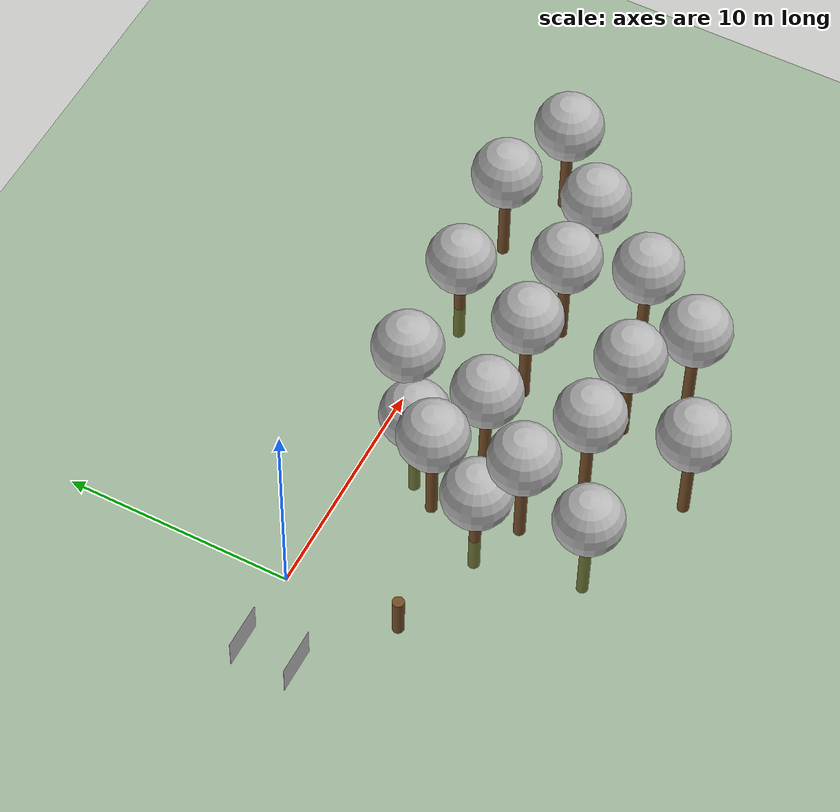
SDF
<sdf version="1.6">
 <world name="default">
  <model name="ground_plane">
   <static>1</static>
   <link name="link">
    <collision name="collision">
     <geometry><plane><normal>0 0 1</normal><size>250 250</size></plane></geometry>
     <surface><friction><ode><mu>1</mu><mu2>1</mu2></ode></friction></surface>
    </collision>
    <visual name="grass">
     <cast_shadows>0</cast_shadows>
     <geometry><plane><normal>0 0 1</normal><size>150 250</size></plane></geometry>
     <material>
      <script><uri>file://media/materials/scripts/Gazebo.material</uri><name>Gazebo/Grass</name></script>
     </material>
    </visual>
   </link>
  </model>
  <model name="tree_simple">
   <static>1</static>
   <link name="link">
    <pose>0 0 0.1 0 -0 0</pose>
    <inertial>
     <mass>666</mass>
     <inertia>
      <ixx>0.0861167</ixx>
      <ixy>0</ixy>
      <ixz>0</ixz>
      <iyy>0.0861167</iyy>
      <iyz>0</iyz>
      <izz>0.0861167</izz>
     </inertia>
    </inertial>
    <collision name="collision_trunk">
     <pose>0 0 2 0 -0 0</pose>
     <geometry><cylinder><radius>0.25</radius><length>4</length></cylinder></geometry>
     <surface>
      <contact>
       <poissons_ratio>0.347</poissons_ratio>
       <elastic_modulus>8.8e+09</elastic_modulus>
       <ode><kp>100000</kp><kd>100</kd><max_vel>100</max_vel><min_depth>0.001</min_depth></ode>
      </contact>
      <friction>
       <torsional>
        <coefficient>1</coefficient>
        <use_patch_radius>0</use_patch_radius>
        <surface_radius>0.01</surface_radius>
       </torsional>
      </friction>
     </surface>
    </collision>
    <collision name="collision_treetop">
     <pose>0 0 5.2 0 -0 0</pose>
     <geometry><sphere><radius>1.5</radius></sphere></geometry>
     <surface>
      <contact>
       <poissons_ratio>0.347</poissons_ratio>
       <elastic_modulus>8.8e+09</elastic_modulus>
       <ode><kp>100000</kp><kd>100</kd><max_vel>100</max_vel><min_depth>0.001</min_depth></ode>
      </contact>
      <friction>
       <torsional>
        <coefficient>1</coefficient>
        <use_patch_radius>0</use_patch_radius>
        <surface_radius>0.01</surface_radius>
       </torsional>
      </friction>
     </surface>
    </collision>
    <visual name="trunk">
     <pose>0 0 2 0 -0 0</pose>
     <geometry><cylinder><radius>0.25</radius><length>4</length></cylinder></geometry>
     <material>
      <script>
       <uri>model://tree_simple/scripts</uri>
       <uri>model://tree_simple/materials/textures</uri>
       <name>TreeSimple/Trunk</name>
      </script>
     </material>
    </visual>
    <visual name="treetop">
     <pose>0 0 5.2 0 -0 0</pose>
     <geometry><sphere><radius>1.5</radius></sphere></geometry>
     <material>
      <script>
       <uri>model://tree_simple/scripts</uri>
       <uri>model://tree_simple/materials/textures</uri>
       <name>TreeSimple/Treetop</name>
      </script>
     </material>
    </visual>
   </link>
   <pose>5.72189 -3.56908 0 0 -0 0</pose>
  </model>
  <model name="tree_simple_0">
   <static>1</static>
   <link name="link">
    <pose>0 0 0.1 0 -0 0</pose>
    <inertial>
     <mass>666</mass>
     <inertia>
      <ixx>0.0861167</ixx>
      <ixy>0</ixy>
      <ixz>0</ixz>
      <iyy>0.0861167</iyy>
      <iyz>0</iyz>
      <izz>0.0861167</izz>
     </inertia>
    </inertial>
    <collision name="collision_trunk">
     <pose>0 0 2 0 -0 0</pose>
     <geometry><cylinder><radius>0.25</radius><length>4</length></cylinder></geometry>
     <surface>
      <contact>
       <poissons_ratio>0.347</poissons_ratio>
       <elastic_modulus>8.8e+09</elastic_modulus>
       <ode><kp>100000</kp><kd>100</kd><max_vel>100</max_vel><min_depth>0.001</min_depth></ode>
      </contact>
      <friction>
       <torsional>
        <coefficient>1</coefficient>
        <use_patch_radius>0</use_patch_radius>
        <surface_radius>0.01</surface_radius>
       </torsional>
      </friction>
     </surface>
    </collision>
    <collision name="collision_treetop">
     <pose>0 0 5.2 0 -0 0</pose>
     <geometry><sphere><radius>1.5</radius></sphere></geometry>
     <surface>
      <contact>
       <poissons_ratio>0.347</poissons_ratio>
       <elastic_modulus>8.8e+09</elastic_modulus>
       <ode><kp>100000</kp><kd>100</kd><max_vel>100</max_vel><min_depth>0.001</min_depth></ode>
      </contact>
      <friction>
       <torsional>
        <coefficient>1</coefficient>
        <use_patch_radius>0</use_patch_radius>
        <surface_radius>0.01</surface_radius>
       </torsional>
      </friction>
     </surface>
    </collision>
    <visual name="trunk">
     <pose>0 0 2 0 -0 0</pose>
     <geometry><cylinder><radius>0.25</radius><length>4</length></cylinder></geometry>
     <material>
      <script>
       <uri>model://tree_simple/scripts</uri>
       <uri>model://tree_simple/materials/textures</uri>
       <name>TreeSimple/Trunk</name>
      </script>
     </material>
    </visual>
    <visual name="treetop">
     <pose>0 0 5.2 0 -0 0</pose>
     <geometry><sphere><radius>1.5</radius></sphere></geometry>
     <material>
      <script>
       <uri>model://tree_simple/scripts</uri>
       <uri>model://tree_simple/materials/textures</uri>
       <name>TreeSimple/Treetop</name>
      </script>
     </material>
    </visual>
   </link>
   <pose>10.5264 -12.5818 0 0 -0 0</pose>
  </model>
  <model name="tree_simple_3">
   <static>1</static>
   <link name="link">
    <pose>0 0 0.1 0 -0 0</pose>
    <inertial>
     <mass>666</mass>
     <inertia>
      <ixx>0.0861167</ixx>
      <ixy>0</ixy>
      <ixz>0</ixz>
      <iyy>0.0861167</iyy>
      <iyz>0</iyz>
      <izz>0.0861167</izz>
     </inertia>
    </inertial>
    <collision name="collision_trunk">
     <pose>0 0 2 0 -0 0</pose>
     <geometry><cylinder><radius>0.25</radius><length>4</length></cylinder></geometry>
     <surface>
      <contact>
       <poissons_ratio>0.347</poissons_ratio>
       <elastic_modulus>8.8e+09</elastic_modulus>
       <ode><kp>100000</kp><kd>100</kd><max_vel>100</max_vel><min_depth>0.001</min_depth></ode>
      </contact>
      <friction>
       <torsional>
        <coefficient>1</coefficient>
        <use_patch_radius>0</use_patch_radius>
        <surface_radius>0.01</surface_radius>
       </torsional>
      </friction>
     </surface>
    </collision>
    <collision name="collision_treetop">
     <pose>0 0 5.2 0 -0 0</pose>
     <geometry><sphere><radius>1.5</radius></sphere></geometry>
     <surface>
      <contact>
       <poissons_ratio>0.347</poissons_ratio>
       <elastic_modulus>8.8e+09</elastic_modulus>
       <ode><kp>100000</kp><kd>100</kd><max_vel>100</max_vel><min_depth>0.001</min_depth></ode>
      </contact>
      <friction>
       <torsional>
        <coefficient>1</coefficient>
        <use_patch_radius>0</use_patch_radius>
        <surface_radius>0.01</surface_radius>
       </torsional>
      </friction>
     </surface>
    </collision>
    <visual name="trunk">
     <pose>0 0 2 0 -0 0</pose>
     <geometry><cylinder><radius>0.25</radius><length>4</length></cylinder></geometry>
     <material>
      <script>
       <uri>model://tree_simple/scripts</uri>
       <uri>model://tree_simple/materials/textures</uri>
       <name>TreeSimple/Trunk</name>
      </script>
     </material>
    </visual>
    <visual name="treetop">
     <pose>0 0 5.2 0 -0 0</pose>
     <geometry><sphere><radius>1.5</radius></sphere></geometry>
     <material>
      <script>
       <uri>model://tree_simple/scripts</uri>
       <uri>model://tree_simple/materials/textures</uri>
       <name>TreeSimple/Treetop</name>
      </script>
     </material>
    </visual>
   </link>
   <pose>9.46646 -8.62281 0 0 -0 0</pose>
  </model>
  <model name="tree_simple_4">
   <static>1</static>
   <link name="link">
    <pose>0 0 0.1 0 -0 0</pose>
    <inertial>
     <mass>666</mass>
     <inertia>
      <ixx>0.0861167</ixx>
      <ixy>0</ixy>
      <ixz>0</ixz>
      <iyy>0.0861167</iyy>
      <iyz>0</iyz>
      <izz>0.0861167</izz>
     </inertia>
    </inertial>
    <collision name="collision_trunk">
     <pose>0 0 2 0 -0 0</pose>
     <geometry><cylinder><radius>0.25</radius><length>4</length></cylinder></geometry>
     <surface>
      <contact>
       <poissons_ratio>0.347</poissons_ratio>
       <elastic_modulus>8.8e+09</elastic_modulus>
       <ode><kp>100000</kp><kd>100</kd><max_vel>100</max_vel><min_depth>0.001</min_depth></ode>
      </contact>
      <friction>
       <torsional>
        <coefficient>1</coefficient>
        <use_patch_radius>0</use_patch_radius>
        <surface_radius>0.01</surface_radius>
       </torsional>
      </friction>
     </surface>
    </collision>
    <collision name="collision_treetop">
     <pose>0 0 5.2 0 -0 0</pose>
     <geometry><sphere><radius>1.5</radius></sphere></geometry>
     <surface>
      <contact>
       <poissons_ratio>0.347</poissons_ratio>
       <elastic_modulus>8.8e+09</elastic_modulus>
       <ode><kp>100000</kp><kd>100</kd><max_vel>100</max_vel><min_depth>0.001</min_depth></ode>
      </contact>
      <friction>
       <torsional>
        <coefficient>1</coefficient>
        <use_patch_radius>0</use_patch_radius>
        <surface_radius>0.01</surface_radius>
       </torsional>
      </friction>
     </surface>
    </collision>
    <visual name="trunk">
     <pose>0 0 2 0 -0 0</pose>
     <geometry><cylinder><radius>0.25</radius><length>4</length></cylinder></geometry>
     <material>
      <script>
       <uri>model://tree_simple/scripts</uri>
       <uri>model://tree_simple/materials/textures</uri>
       <name>TreeSimple/Trunk</name>
      </script>
     </material>
    </visual>
    <visual name="treetop">
     <pose>0 0 5.2 0 -0 0</pose>
     <geometry><sphere><radius>1.5</radius></sphere></geometry>
     <material>
      <script>
       <uri>model://tree_simple/scripts</uri>
       <uri>model://tree_simple/materials/textures</uri>
       <name>TreeSimple/Treetop</name>
      </script>
     </material>
    </visual>
   </link>
   <pose>15.196 -10.5861 0 0 -0 0</pose>
  </model>
  <model name="tree_simple_5">
   <static>1</static>
   <link name="link">
    <pose>0 0 0.1 0 -0 0</pose>
    <inertial>
     <mass>666</mass>
     <inertia>
      <ixx>0.0861167</ixx>
      <ixy>0</ixy>
      <ixz>0</ixz>
      <iyy>0.0861167</iyy>
      <iyz>0</iyz>
      <izz>0.0861167</izz>
     </inertia>
    </inertial>
    <collision name="collision_trunk">
     <pose>0 0 2 0 -0 0</pose>
     <geometry><cylinder><radius>0.25</radius><length>4</length></cylinder></geometry>
     <surface>
      <contact>
       <poissons_ratio>0.347</poissons_ratio>
       <elastic_modulus>8.8e+09</elastic_modulus>
       <ode><kp>100000</kp><kd>100</kd><max_vel>100</max_vel><min_depth>0.001</min_depth></ode>
      </contact>
      <friction>
       <torsional>
        <coefficient>1</coefficient>
        <use_patch_radius>0</use_patch_radius>
        <surface_radius>0.01</surface_radius>
       </torsional>
      </friction>
     </surface>
    </collision>
    <collision name="collision_treetop">
     <pose>0 0 5.2 0 -0 0</pose>
     <geometry><sphere><radius>1.5</radius></sphere></geometry>
     <surface>
      <contact>
       <poissons_ratio>0.347</poissons_ratio>
       <elastic_modulus>8.8e+09</elastic_modulus>
       <ode><kp>100000</kp><kd>100</kd><max_vel>100</max_vel><min_depth>0.001</min_depth></ode>
      </contact>
      <friction>
       <torsional>
        <coefficient>1</coefficient>
        <use_patch_radius>0</use_patch_radius>
        <surface_radius>0.01</surface_radius>
       </torsional>
      </friction>
     </surface>
    </collision>
    <visual name="trunk">
     <pose>0 0 2 0 -0 0</pose>
     <geometry><cylinder><radius>0.25</radius><length>4</length></cylinder></geometry>
     <material>
      <script>
       <uri>model://tree_simple/scripts</uri>
       <uri>model://tree_simple/materials/textures</uri>
       <name>TreeSimple/Trunk</name>
      </script>
     </material>
    </visual>
    <visual name="treetop">
     <pose>0 0 5.2 0 -0 0</pose>
     <geometry><sphere><radius>1.5</radius></sphere></geometry>
     <material>
      <script>
       <uri>model://tree_simple/scripts</uri>
       <uri>model://tree_simple/materials/textures</uri>
       <name>TreeSimple/Treetop</name>
      </script>
     </material>
    </visual>
   </link>
   <pose>9.09139 -0.673957 0 0 -0 0</pose>
  </model>
  <model name="tree_simple_6">
   <static>1</static>
   <link name="link">
    <pose>0 0 0.1 0 -0 0</pose>
    <inertial>
     <mass>666</mass>
     <inertia>
      <ixx>0.0861167</ixx>
      <ixy>0</ixy>
      <ixz>0</ixz>
      <iyy>0.0861167</iyy>
      <iyz>0</iyz>
      <izz>0.0861167</izz>
     </inertia>
    </inertial>
    <collision name="collision_trunk">
     <pose>0 0 2 0 -0 0</pose>
     <geometry><cylinder><radius>0.25</radius><length>4</length></cylinder></geometry>
     <surface>
      <contact>
       <poissons_ratio>0.347</poissons_ratio>
       <elastic_modulus>8.8e+09</elastic_modulus>
       <ode><kp>100000</kp><kd>100</kd><max_vel>100</max_vel><min_depth>0.001</min_depth></ode>
      </contact>
      <friction>
       <torsional>
        <coefficient>1</coefficient>
        <use_patch_radius>0</use_patch_radius>
        <surface_radius>0.01</surface_radius>
       </torsional>
      </friction>
     </surface>
    </collision>
    <collision name="collision_treetop">
     <pose>0 0 5.2 0 -0 0</pose>
     <geometry><sphere><radius>1.5</radius></sphere></geometry>
     <surface>
      <contact>
       <poissons_ratio>0.347</poissons_ratio>
       <elastic_modulus>8.8e+09</elastic_modulus>
       <ode><kp>100000</kp><kd>100</kd><max_vel>100</max_vel><min_depth>0.001</min_depth></ode>
      </contact>
      <friction>
       <torsional>
        <coefficient>1</coefficient>
        <use_patch_radius>0</use_patch_radius>
        <surface_radius>0.01</surface_radius>
       </torsional>
      </friction>
     </surface>
    </collision>
    <visual name="trunk">
     <pose>0 0 2 0 -0 0</pose>
     <geometry><cylinder><radius>0.25</radius><length>4</length></cylinder></geometry>
     <material>
      <script>
       <uri>model://tree_simple/scripts</uri>
       <uri>model://tree_simple/materials/textures</uri>
       <name>TreeSimple/Trunk</name>
      </script>
     </material>
    </visual>
    <visual name="treetop">
     <pose>0 0 5.2 0 -0 0</pose>
     <geometry><sphere><radius>1.5</radius></sphere></geometry>
     <material>
      <script>
       <uri>model://tree_simple/scripts</uri>
       <uri>model://tree_simple/materials/textures</uri>
       <name>TreeSimple/Treetop</name>
      </script>
     </material>
    </visual>
   </link>
   <pose>12.8258 -8.77731 0 0 -0 0</pose>
  </model>
  <model name="tree_simple_7">
   <static>1</static>
   <link name="link">
    <pose>0 0 0.1 0 -0 0</pose>
    <inertial>
     <mass>666</mass>
     <inertia>
      <ixx>0.0861167</ixx>
      <ixy>0</ixy>
      <ixz>0</ixz>
      <iyy>0.0861167</iyy>
      <iyz>0</iyz>
      <izz>0.0861167</izz>
     </inertia>
    </inertial>
    <collision name="collision_trunk">
     <pose>0 0 2 0 -0 0</pose>
     <geometry><cylinder><radius>0.25</radius><length>4</length></cylinder></geometry>
     <surface>
      <contact>
       <poissons_ratio>0.347</poissons_ratio>
       <elastic_modulus>8.8e+09</elastic_modulus>
       <ode><kp>100000</kp><kd>100</kd><max_vel>100</max_vel><min_depth>0.001</min_depth></ode>
      </contact>
      <friction>
       <torsional>
        <coefficient>1</coefficient>
        <use_patch_radius>0</use_patch_radius>
        <surface_radius>0.01</surface_radius>
       </torsional>
      </friction>
     </surface>
    </collision>
    <collision name="collision_treetop">
     <pose>0 0 5.2 0 -0 0</pose>
     <geometry><sphere><radius>1.5</radius></sphere></geometry>
     <surface>
      <contact>
       <poissons_ratio>0.347</poissons_ratio>
       <elastic_modulus>8.8e+09</elastic_modulus>
       <ode><kp>100000</kp><kd>100</kd><max_vel>100</max_vel><min_depth>0.001</min_depth></ode>
      </contact>
      <friction>
       <torsional>
        <coefficient>1</coefficient>
        <use_patch_radius>0</use_patch_radius>
        <surface_radius>0.01</surface_radius>
       </torsional>
      </friction>
     </surface>
    </collision>
    <visual name="trunk">
     <pose>0 0 2 0 -0 0</pose>
     <geometry><cylinder><radius>0.25</radius><length>4</length></cylinder></geometry>
     <material>
      <script>
       <uri>model://tree_simple/scripts</uri>
       <uri>model://tree_simple/materials/textures</uri>
       <name>TreeSimple/Trunk</name>
      </script>
     </material>
    </visual>
    <visual name="treetop">
     <pose>0 0 5.2 0 -0 0</pose>
     <geometry><sphere><radius>1.5</radius></sphere></geometry>
     <material>
      <script>
       <uri>model://tree_simple/scripts</uri>
       <uri>model://tree_simple/materials/textures</uri>
       <name>TreeSimple/Treetop</name>
      </script>
     </material>
    </visual>
   </link>
   <pose>12.5972 -4.31424 0 0 -0 0</pose>
  </model>
  <model name="tree_simple_8">
   <static>1</static>
   <link name="link">
    <pose>0 0 0.1 0 -0 0</pose>
    <inertial>
     <mass>666</mass>
     <inertia>
      <ixx>0.0861167</ixx>
      <ixy>0</ixy>
      <ixz>0</ixz>
      <iyy>0.0861167</iyy>
      <iyz>0</iyz>
      <izz>0.0861167</izz>
     </inertia>
    </inertial>
    <collision name="collision_trunk">
     <pose>0 0 2 0 -0 0</pose>
     <geometry><cylinder><radius>0.25</radius><length>4</length></cylinder></geometry>
     <surface>
      <contact>
       <poissons_ratio>0.347</poissons_ratio>
       <elastic_modulus>8.8e+09</elastic_modulus>
       <ode><kp>100000</kp><kd>100</kd><max_vel>100</max_vel><min_depth>0.001</min_depth></ode>
      </contact>
      <friction>
       <torsional>
        <coefficient>1</coefficient>
        <use_patch_radius>0</use_patch_radius>
        <surface_radius>0.01</surface_radius>
       </torsional>
      </friction>
     </surface>
    </collision>
    <collision name="collision_treetop">
     <pose>0 0 5.2 0 -0 0</pose>
     <geometry><sphere><radius>1.5</radius></sphere></geometry>
     <surface>
      <contact>
       <poissons_ratio>0.347</poissons_ratio>
       <elastic_modulus>8.8e+09</elastic_modulus>
       <ode><kp>100000</kp><kd>100</kd><max_vel>100</max_vel><min_depth>0.001</min_depth></ode>
      </contact>
      <friction>
       <torsional>
        <coefficient>1</coefficient>
        <use_patch_radius>0</use_patch_radius>
        <surface_radius>0.01</surface_radius>
       </torsional>
      </friction>
     </surface>
    </collision>
    <visual name="trunk">
     <pose>0 0 2 0 -0 0</pose>
     <geometry><cylinder><radius>0.25</radius><length>4</length></cylinder></geometry>
     <material>
      <script>
       <uri>model://tree_simple/scripts</uri>
       <uri>model://tree_simple/materials/textures</uri>
       <name>TreeSimple/Trunk</name>
      </script>
     </material>
    </visual>
    <visual name="treetop">
     <pose>0 0 5.2 0 -0 0</pose>
     <geometry><sphere><radius>1.5</radius></sphere></geometry>
     <material>
      <script>
       <uri>model://tree_simple/scripts</uri>
       <uri>model://tree_simple/materials/textures</uri>
       <name>TreeSimple/Treetop</name>
      </script>
     </material>
    </visual>
   </link>
   <pose>6.40844 -7.20661 0 0 -0 0</pose>
  </model>
  <model name="tree_simple_9">
   <static>1</static>
   <link name="link">
    <pose>0 0 0.1 0 -0 0</pose>
    <inertial>
     <mass>666</mass>
     <inertia>
      <ixx>0.0861167</ixx>
      <ixy>0</ixy>
      <ixz>0</ixz>
      <iyy>0.0861167</iyy>
      <iyz>0</iyz>
      <izz>0.0861167</izz>
     </inertia>
    </inertial>
    <collision name="collision_trunk">
     <pose>0 0 2 0 -0 0</pose>
     <geometry><cylinder><radius>0.25</radius><length>4</length></cylinder></geometry>
     <surface>
      <contact>
       <poissons_ratio>0.347</poissons_ratio>
       <elastic_modulus>8.8e+09</elastic_modulus>
       <ode><kp>100000</kp><kd>100</kd><max_vel>100</max_vel><min_depth>0.001</min_depth></ode>
      </contact>
      <friction>
       <torsional>
        <coefficient>1</coefficient>
        <use_patch_radius>0</use_patch_radius>
        <surface_radius>0.01</surface_radius>
       </torsional>
      </friction>
     </surface>
    </collision>
    <collision name="collision_treetop">
     <pose>0 0 5.2 0 -0 0</pose>
     <geometry><sphere><radius>1.5</radius></sphere></geometry>
     <surface>
      <contact>
       <poissons_ratio>0.347</poissons_ratio>
       <elastic_modulus>8.8e+09</elastic_modulus>
       <ode><kp>100000</kp><kd>100</kd><max_vel>100</max_vel><min_depth>0.001</min_depth></ode>
      </contact>
      <friction>
       <torsional>
        <coefficient>1</coefficient>
        <use_patch_radius>0</use_patch_radius>
        <surface_radius>0.01</surface_radius>
       </torsional>
      </friction>
     </surface>
    </collision>
    <visual name="trunk">
     <pose>0 0 2 0 -0 0</pose>
     <geometry><cylinder><radius>0.25</radius><length>4</length></cylinder></geometry>
     <material>
      <script>
       <uri>model://tree_simple/scripts</uri>
       <uri>model://tree_simple/materials/textures</uri>
       <name>TreeSimple/Trunk</name>
      </script>
     </material>
    </visual>
    <visual name="treetop">
     <pose>0 0 5.2 0 -0 0</pose>
     <geometry><sphere><radius>1.5</radius></sphere></geometry>
     <material>
      <script>
       <uri>model://tree_simple/scripts</uri>
       <uri>model://tree_simple/materials/textures</uri>
       <name>TreeSimple/Treetop</name>
      </script>
     </material>
    </visual>
   </link>
   <pose>17.161 -7.52811 0 0 -0 0</pose>
  </model>
  <model name="tree_simple_10">
   <static>1</static>
   <link name="link">
    <pose>0 0 0.1 0 -0 0</pose>
    <inertial>
     <mass>666</mass>
     <inertia>
      <ixx>0.0861167</ixx>
      <ixy>0</ixy>
      <ixz>0</ixz>
      <iyy>0.0861167</iyy>
      <iyz>0</iyz>
      <izz>0.0861167</izz>
     </inertia>
    </inertial>
    <collision name="collision_trunk">
     <pose>0 0 2 0 -0 0</pose>
     <geometry><cylinder><radius>0.25</radius><length>4</length></cylinder></geometry>
     <surface>
      <contact>
       <poissons_ratio>0.347</poissons_ratio>
       <elastic_modulus>8.8e+09</elastic_modulus>
       <ode><kp>100000</kp><kd>100</kd><max_vel>100</max_vel><min_depth>0.001</min_depth></ode>
      </contact>
      <friction>
       <torsional>
        <coefficient>1</coefficient>
        <use_patch_radius>0</use_patch_radius>
        <surface_radius>0.01</surface_radius>
       </torsional>
      </friction>
     </surface>
    </collision>
    <collision name="collision_treetop">
     <pose>0 0 5.2 0 -0 0</pose>
     <geometry><sphere><radius>1.5</radius></sphere></geometry>
     <surface>
      <contact>
       <poissons_ratio>0.347</poissons_ratio>
       <elastic_modulus>8.8e+09</elastic_modulus>
       <ode><kp>100000</kp><kd>100</kd><max_vel>100</max_vel><min_depth>0.001</min_depth></ode>
      </contact>
      <friction>
       <torsional>
        <coefficient>1</coefficient>
        <use_patch_radius>0</use_patch_radius>
        <surface_radius>0.01</surface_radius>
       </torsional>
      </friction>
     </surface>
    </collision>
    <visual name="trunk">
     <pose>0 0 2 0 -0 0</pose>
     <geometry><cylinder><radius>0.25</radius><length>4</length></cylinder></geometry>
     <material>
      <script>
       <uri>model://tree_simple/scripts</uri>
       <uri>model://tree_simple/materials/textures</uri>
       <name>TreeSimple/Trunk</name>
      </script>
     </material>
    </visual>
    <visual name="treetop">
     <pose>0 0 5.2 0 -0 0</pose>
     <geometry><sphere><radius>1.5</radius></sphere></geometry>
     <material>
      <script>
       <uri>model://tree_simple/scripts</uri>
       <uri>model://tree_simple/materials/textures</uri>
       <name>TreeSimple/Treetop</name>
      </script>
     </material>
    </visual>
   </link>
   <pose>19.4597 -4.05165 0 0 -0 0</pose>
  </model>
  <model name="tree_simple_16">
   <static>1</static>
   <link name="link">
    <pose>0 0 0.1 0 -0 0</pose>
    <inertial>
     <mass>666</mass>
     <inertia>
      <ixx>0.0861167</ixx>
      <ixy>0</ixy>
      <ixz>0</ixz>
      <iyy>0.0861167</iyy>
      <iyz>0</iyz>
      <izz>0.0861167</izz>
     </inertia>
    </inertial>
    <collision name="collision_trunk">
     <pose>0 0 2 0 -0 0</pose>
     <geometry><cylinder><radius>0.25</radius><length>4</length></cylinder></geometry>
     <surface>
      <contact>
       <poissons_ratio>0.347</poissons_ratio>
       <elastic_modulus>8.8e+09</elastic_modulus>
       <ode><kp>100000</kp><kd>100</kd><max_vel>100</max_vel><min_depth>0.001</min_depth></ode>
      </contact>
      <friction>
       <torsional>
        <coefficient>1</coefficient>
        <use_patch_radius>0</use_patch_radius>
        <surface_radius>0.01</surface_radius>
       </torsional>
      </friction>
     </surface>
    </collision>
    <collision name="collision_treetop">
     <pose>0 0 5.2 0 -0 0</pose>
     <geometry><sphere><radius>1.5</radius></sphere></geometry>
     <surface>
      <contact>
       <poissons_ratio>0.347</poissons_ratio>
       <elastic_modulus>8.8e+09</elastic_modulus>
       <ode><kp>100000</kp><kd>100</kd><max_vel>100</max_vel><min_depth>0.001</min_depth></ode>
      </contact>
      <friction>
       <torsional>
        <coefficient>1</coefficient>
        <use_patch_radius>0</use_patch_radius>
        <surface_radius>0.01</surface_radius>
       </torsional>
      </friction>
     </surface>
    </collision>
    <visual name="trunk">
     <pose>0 0 2 0 -0 0</pose>
     <geometry><cylinder><radius>0.25</radius><length>4</length></cylinder></geometry>
     <material>
      <script>
       <uri>model://tree_simple/scripts</uri>
       <uri>model://tree_simple/materials/textures</uri>
       <name>TreeSimple/Trunk</name>
      </script>
     </material>
    </visual>
    <visual name="treetop">
     <pose>0 0 5.2 0 -0 0</pose>
     <geometry><sphere><radius>1.5</radius></sphere></geometry>
     <material>
      <script>
       <uri>model://tree_simple/scripts</uri>
       <uri>model://tree_simple/materials/textures</uri>
       <name>TreeSimple/Treetop</name>
      </script>
     </material>
    </visual>
   </link>
   <pose>8.59035 -4.49916 0 0 -0 0</pose>
  </model>
  <model name="tree_simple_18">
   <static>1</static>
   <link name="link">
    <pose>0 0 0.1 0 -0 0</pose>
    <inertial>
     <mass>666</mass>
     <inertia>
      <ixx>0.0861167</ixx>
      <ixy>0</ixy>
      <ixz>0</ixz>
      <iyy>0.0861167</iyy>
      <iyz>0</iyz>
      <izz>0.0861167</izz>
     </inertia>
    </inertial>
    <collision name="collision_trunk">
     <pose>0 0 2 0 -0 0</pose>
     <geometry><cylinder><radius>0.25</radius><length>4</length></cylinder></geometry>
     <surface>
      <contact>
       <poissons_ratio>0.347</poissons_ratio>
       <elastic_modulus>8.8e+09</elastic_modulus>
       <ode><kp>100000</kp><kd>100</kd><max_vel>100</max_vel><min_depth>0.001</min_depth></ode>
      </contact>
      <friction>
       <torsional>
        <coefficient>1</coefficient>
        <use_patch_radius>0</use_patch_radius>
        <surface_radius>0.01</surface_radius>
       </torsional>
      </friction>
     </surface>
    </collision>
    <collision name="collision_treetop">
     <pose>0 0 5.2 0 -0 0</pose>
     <geometry><sphere><radius>1.5</radius></sphere></geometry>
     <surface>
      <contact>
       <poissons_ratio>0.347</poissons_ratio>
       <elastic_modulus>8.8e+09</elastic_modulus>
       <ode><kp>100000</kp><kd>100</kd><max_vel>100</max_vel><min_depth>0.001</min_depth></ode>
      </contact>
      <friction>
       <torsional>
        <coefficient>1</coefficient>
        <use_patch_radius>0</use_patch_radius>
        <surface_radius>0.01</surface_radius>
       </torsional>
      </friction>
     </surface>
    </collision>
    <visual name="trunk">
     <pose>0 0 2 0 -0 0</pose>
     <geometry><cylinder><radius>0.25</radius><length>4</length></cylinder></geometry>
     <material>
      <script>
       <uri>model://tree_simple/scripts</uri>
       <uri>model://tree_simple/materials/textures</uri>
       <name>TreeSimple/Trunk</name>
      </script>
     </material>
    </visual>
    <visual name="treetop">
     <pose>0 0 5.2 0 -0 0</pose>
     <geometry><sphere><radius>1.5</radius></sphere></geometry>
     <material>
      <script>
       <uri>model://tree_simple/scripts</uri>
       <uri>model://tree_simple/materials/textures</uri>
       <name>TreeSimple/Treetop</name>
      </script>
     </material>
    </visual>
   </link>
   <pose>15.471 0.136496 -2.094 0 -0 0</pose>
  </model>
  <model name="tree_simple_20">
   <static>1</static>
   <link name="link">
    <pose>0 0 0.1 0 -0 0</pose>
    <inertial>
     <mass>666</mass>
     <inertia>
      <ixx>0.0861167</ixx>
      <ixy>0</ixy>
      <ixz>0</ixz>
      <iyy>0.0861167</iyy>
      <iyz>0</iyz>
      <izz>0.0861167</izz>
     </inertia>
    </inertial>
    <collision name="collision_trunk">
     <pose>0 0 2 0 -0 0</pose>
     <geometry><cylinder><radius>0.25</radius><length>4</length></cylinder></geometry>
     <surface>
      <contact>
       <poissons_ratio>0.347</poissons_ratio>
       <elastic_modulus>8.8e+09</elastic_modulus>
       <ode><kp>100000</kp><kd>100</kd><max_vel>100</max_vel><min_depth>0.001</min_depth></ode>
      </contact>
      <friction>
       <torsional>
        <coefficient>1</coefficient>
        <use_patch_radius>0</use_patch_radius>
        <surface_radius>0.01</surface_radius>
       </torsional>
      </friction>
     </surface>
    </collision>
    <collision name="collision_treetop">
     <pose>0 0 5.2 0 -0 0</pose>
     <geometry><sphere><radius>1.5</radius></sphere></geometry>
     <surface>
      <contact>
       <poissons_ratio>0.347</poissons_ratio>
       <elastic_modulus>8.8e+09</elastic_modulus>
       <ode><kp>100000</kp><kd>100</kd><max_vel>100</max_vel><min_depth>0.001</min_depth></ode>
      </contact>
      <friction>
       <torsional>
        <coefficient>1</coefficient>
        <use_patch_radius>0</use_patch_radius>
        <surface_radius>0.01</surface_radius>
       </torsional>
      </friction>
     </surface>
    </collision>
    <visual name="trunk">
     <pose>0 0 2 0 -0 0</pose>
     <geometry><cylinder><radius>0.25</radius><length>4</length></cylinder></geometry>
     <material>
      <script>
       <uri>model://tree_simple/scripts</uri>
       <uri>model://tree_simple/materials/textures</uri>
       <name>TreeSimple/Trunk</name>
      </script>
     </material>
    </visual>
    <visual name="treetop">
     <pose>0 0 5.2 0 -0 0</pose>
     <geometry><sphere><radius>1.5</radius></sphere></geometry>
     <material>
      <script>
       <uri>model://tree_simple/scripts</uri>
       <uri>model://tree_simple/materials/textures</uri>
       <name>TreeSimple/Treetop</name>
      </script>
     </material>
    </visual>
   </link>
   <pose>18.9425 -0.172712 0 0 -0 0</pose>
  </model>
  <model name="tree_simple_24">
   <static>1</static>
   <link name="link">
    <pose>0 0 0.1 0 -0 0</pose>
    <inertial>
     <mass>666</mass>
     <inertia>
      <ixx>0.0861167</ixx>
      <ixy>0</ixy>
      <ixz>0</ixz>
      <iyy>0.0861167</iyy>
      <iyz>0</iyz>
      <izz>0.0861167</izz>
     </inertia>
    </inertial>
    <collision name="collision_trunk">
     <pose>0 0 2 0 -0 0</pose>
     <geometry><cylinder><radius>0.25</radius><length>4</length></cylinder></geometry>
     <surface>
      <contact>
       <poissons_ratio>0.347</poissons_ratio>
       <elastic_modulus>8.8e+09</elastic_modulus>
       <ode><kp>100000</kp><kd>100</kd><max_vel>100</max_vel><min_depth>0.001</min_depth></ode>
      </contact>
      <friction>
       <torsional>
        <coefficient>1</coefficient>
        <use_patch_radius>0</use_patch_radius>
        <surface_radius>0.01</surface_radius>
       </torsional>
      </friction>
     </surface>
    </collision>
    <collision name="collision_treetop">
     <pose>0 0 5.2 0 -0 0</pose>
     <geometry><sphere><radius>1.5</radius></sphere></geometry>
     <surface>
      <contact>
       <poissons_ratio>0.347</poissons_ratio>
       <elastic_modulus>8.8e+09</elastic_modulus>
       <ode><kp>100000</kp><kd>100</kd><max_vel>100</max_vel><min_depth>0.001</min_depth></ode>
      </contact>
      <friction>
       <torsional>
        <coefficient>1</coefficient>
        <use_patch_radius>0</use_patch_radius>
        <surface_radius>0.01</surface_radius>
       </torsional>
      </friction>
     </surface>
    </collision>
    <visual name="trunk">
     <pose>0 0 2 0 -0 0</pose>
     <geometry><cylinder><radius>0.25</radius><length>4</length></cylinder></geometry>
     <material>
      <script>
       <uri>model://tree_simple/scripts</uri>
       <uri>model://tree_simple/materials/textures</uri>
       <name>TreeSimple/Trunk</name>
      </script>
     </material>
    </visual>
    <visual name="treetop">
     <pose>0 0 5.2 0 -0 0</pose>
     <geometry><sphere><radius>1.5</radius></sphere></geometry>
     <material>
      <script>
       <uri>model://tree_simple/scripts</uri>
       <uri>model://tree_simple/materials/textures</uri>
       <name>TreeSimple/Treetop</name>
      </script>
     </material>
    </visual>
   </link>
   <pose>16.1005 -4.34999 0 0 -0 0</pose>
  </model>
  <model name="tree_simple_27">
   <static>1</static>
   <link name="link">
    <pose>0 0 0.1 0 -0 0</pose>
    <inertial>
     <mass>666</mass>
     <inertia>
      <ixx>0.0861167</ixx>
      <ixy>0</ixy>
      <ixz>0</ixz>
      <iyy>0.0861167</iyy>
      <iyz>0</iyz>
      <izz>0.0861167</izz>
     </inertia>
    </inertial>
    <collision name="collision_trunk">
     <pose>0 0 2 0 -0 0</pose>
     <geometry><cylinder><radius>0.25</radius><length>4</length></cylinder></geometry>
     <surface>
      <contact>
       <poissons_ratio>0.347</poissons_ratio>
       <elastic_modulus>8.8e+09</elastic_modulus>
       <ode><kp>100000</kp><kd>100</kd><max_vel>100</max_vel><min_depth>0.001</min_depth></ode>
      </contact>
      <friction>
       <torsional>
        <coefficient>1</coefficient>
        <use_patch_radius>0</use_patch_radius>
        <surface_radius>0.01</surface_radius>
       </torsional>
      </friction>
     </surface>
    </collision>
    <collision name="collision_treetop">
     <pose>0 0 5.2 0 -0 0</pose>
     <geometry><sphere><radius>1.5</radius></sphere></geometry>
     <surface>
      <contact>
       <poissons_ratio>0.347</poissons_ratio>
       <elastic_modulus>8.8e+09</elastic_modulus>
       <ode><kp>100000</kp><kd>100</kd><max_vel>100</max_vel><min_depth>0.001</min_depth></ode>
      </contact>
      <friction>
       <torsional>
        <coefficient>1</coefficient>
        <use_patch_radius>0</use_patch_radius>
        <surface_radius>0.01</surface_radius>
       </torsional>
      </friction>
     </surface>
    </collision>
    <visual name="trunk">
     <pose>0 0 2 0 -0 0</pose>
     <geometry><cylinder><radius>0.25</radius><length>4</length></cylinder></geometry>
     <material>
      <script>
       <uri>model://tree_simple/scripts</uri>
       <uri>model://tree_simple/materials/textures</uri>
       <name>TreeSimple/Trunk</name>
      </script>
     </material>
    </visual>
    <visual name="treetop">
     <pose>0 0 5.2 0 -0 0</pose>
     <geometry><sphere><radius>1.5</radius></sphere></geometry>
     <material>
      <script>
       <uri>model://tree_simple/scripts</uri>
       <uri>model://tree_simple/materials/textures</uri>
       <name>TreeSimple/Treetop</name>
      </script>
     </material>
    </visual>
   </link>
   <pose>22.4385 -1.37747 0 0 -0 0</pose>
  </model>
  <model name="tree_simple_18_clone">
   <static>1</static>
   <link name="link">
    <pose>0 0 0.1 0 -0 0</pose>
    <inertial>
     <mass>666</mass>
     <inertia>
      <ixx>0.0861167</ixx>
      <ixy>0</ixy>
      <ixz>0</ixz>
      <iyy>0.0861167</iyy>
      <iyz>0</iyz>
      <izz>0.0861167</izz>
     </inertia>
    </inertial>
    <collision name="collision_trunk">
     <pose>0 0 2 0 -0 0</pose>
     <geometry><cylinder><radius>0.25</radius><length>4</length></cylinder></geometry>
     <surface>
      <contact>
       <poissons_ratio>0.347</poissons_ratio>
       <elastic_modulus>8.8e+09</elastic_modulus>
       <ode><kp>100000</kp><kd>100</kd><max_vel>100</max_vel><min_depth>0.001</min_depth></ode>
      </contact>
      <friction>
       <torsional>
        <coefficient>1</coefficient>
        <use_patch_radius>0</use_patch_radius>
        <surface_radius>0.01</surface_radius>
       </torsional>
      </friction>
     </surface>
    </collision>
    <collision name="collision_treetop">
     <pose>0 0 5.2 0 -0 0</pose>
     <geometry><sphere><radius>1.5</radius></sphere></geometry>
     <surface>
      <contact>
       <poissons_ratio>0.347</poissons_ratio>
       <elastic_modulus>8.8e+09</elastic_modulus>
       <ode><kp>100000</kp><kd>100</kd><max_vel>100</max_vel><min_depth>0.001</min_depth></ode>
      </contact>
      <friction>
       <torsional>
        <coefficient>1</coefficient>
        <use_patch_radius>0</use_patch_radius>
        <surface_radius>0.01</surface_radius>
       </torsional>
      </friction>
     </surface>
    </collision>
    <visual name="trunk">
     <pose>0 0 2 0 -0 0</pose>
     <geometry><cylinder><radius>0.25</radius><length>4</length></cylinder></geometry>
     <material>
      <script>
       <uri>model://tree_simple/scripts</uri>
       <uri>model://tree_simple/materials/textures</uri>
       <name>TreeSimple/Trunk</name>
      </script>
     </material>
    </visual>
    <visual name="treetop">
     <pose>0 0 5.2 0 -0 0</pose>
     <geometry><sphere><radius>1.5</radius></sphere></geometry>
     <material>
      <script>
       <uri>model://tree_simple/scripts</uri>
       <uri>model://tree_simple/materials/textures</uri>
       <name>TreeSimple/Treetop</name>
      </script>
     </material>
    </visual>
   </link>
   <pose>7.58458 -1.82391 -2.094 0 -0 0</pose>
  </model>
  <model name="tree_simple_18_clone_0">
   <static>1</static>
   <link name="link">
    <pose>0 0 0.1 0 -0 0</pose>
    <inertial>
     <mass>666</mass>
     <inertia>
      <ixx>0.0861167</ixx>
      <ixy>0</ixy>
      <ixz>0</ixz>
      <iyy>0.0861167</iyy>
      <iyz>0</iyz>
      <izz>0.0861167</izz>
     </inertia>
    </inertial>
    <collision name="collision_trunk">
     <pose>0 0 2 0 -0 0</pose>
     <geometry><cylinder><radius>0.25</radius><length>4</length></cylinder></geometry>
     <surface>
      <contact>
       <poissons_ratio>0.347</poissons_ratio>
       <elastic_modulus>8.8e+09</elastic_modulus>
       <ode><kp>100000</kp><kd>100</kd><max_vel>100</max_vel><min_depth>0.001</min_depth></ode>
      </contact>
      <friction>
       <torsional>
        <coefficient>1</coefficient>
        <use_patch_radius>0</use_patch_radius>
        <surface_radius>0.01</surface_radius>
       </torsional>
      </friction>
     </surface>
    </collision>
    <collision name="collision_treetop">
     <pose>0 0 5.2 0 -0 0</pose>
     <geometry><sphere><radius>1.5</radius></sphere></geometry>
     <surface>
      <contact>
       <poissons_ratio>0.347</poissons_ratio>
       <elastic_modulus>8.8e+09</elastic_modulus>
       <ode><kp>100000</kp><kd>100</kd><max_vel>100</max_vel><min_depth>0.001</min_depth></ode>
      </contact>
      <friction>
       <torsional>
        <coefficient>1</coefficient>
        <use_patch_radius>0</use_patch_radius>
        <surface_radius>0.01</surface_radius>
       </torsional>
      </friction>
     </surface>
    </collision>
    <visual name="trunk">
     <pose>0 0 2 0 -0 0</pose>
     <geometry><cylinder><radius>0.25</radius><length>4</length></cylinder></geometry>
     <material>
      <script>
       <uri>model://tree_simple/scripts</uri>
       <uri>model://tree_simple/materials/textures</uri>
       <name>TreeSimple/Trunk</name>
      </script>
     </material>
    </visual>
    <visual name="treetop">
     <pose>0 0 5.2 0 -0 0</pose>
     <geometry><sphere><radius>1.5</radius></sphere></geometry>
     <material>
      <script>
       <uri>model://tree_simple/scripts</uri>
       <uri>model://tree_simple/materials/textures</uri>
       <name>TreeSimple/Treetop</name>
      </script>
     </material>
    </visual>
   </link>
   <pose>5.33626 -5.74594 -2.094 0 -0 0</pose>
  </model>
  <model name="tree_simple_2_clone_0">
   <static>1</static>
   <link name="link">
    <pose>0 0 0.1 0 -0 0</pose>
    <inertial>
     <mass>666</mass>
     <inertia>
      <ixx>0.0861167</ixx>
      <ixy>0</ixy>
      <ixz>0</ixz>
      <iyy>0.0861167</iyy>
      <iyz>0</iyz>
      <izz>0.0861167</izz>
     </inertia>
    </inertial>
    <collision name="collision_trunk">
     <pose>0 0 2 0 -0 0</pose>
     <geometry><cylinder><radius>0.25</radius><length>4</length></cylinder></geometry>
     <surface>
      <contact>
       <poissons_ratio>0.347</poissons_ratio>
       <elastic_modulus>8.8e+09</elastic_modulus>
       <ode><kp>100000</kp><kd>100</kd><max_vel>100</max_vel><min_depth>0.001</min_depth></ode>
      </contact>
      <friction>
       <torsional>
        <coefficient>1</coefficient>
        <use_patch_radius>0</use_patch_radius>
        <surface_radius>0.01</surface_radius>
       </torsional>
      </friction>
     </surface>
    </collision>
    <collision name="collision_treetop">
     <pose>0 0 5.2 0 -0 0</pose>
     <geometry><sphere><radius>1.5</radius></sphere></geometry>
     <surface>
      <contact>
       <poissons_ratio>0.347</poissons_ratio>
       <elastic_modulus>8.8e+09</elastic_modulus>
       <ode><kp>100000</kp><kd>100</kd><max_vel>100</max_vel><min_depth>0.001</min_depth></ode>
      </contact>
      <friction>
       <torsional>
        <coefficient>1</coefficient>
        <use_patch_radius>0</use_patch_radius>
        <surface_radius>0.01</surface_radius>
       </torsional>
      </friction>
     </surface>
    </collision>
    <visual name="trunk">
     <pose>0 0 2 0 -0 0</pose>
     <geometry><cylinder><radius>0.25</radius><length>4</length></cylinder></geometry>
     <material>
      <script>
       <uri>model://tree_simple/scripts</uri>
       <uri>model://tree_simple/materials/textures</uri>
       <name>TreeSimple/Trunk</name>
      </script>
     </material>
    </visual>
    <visual name="treetop">
     <pose>0 0 5.2 0 -0 0</pose>
     <geometry><sphere><radius>1.5</radius></sphere></geometry>
     <material>
      <script>
       <uri>model://tree_simple/scripts</uri>
       <uri>model://tree_simple/materials/textures</uri>
       <name>TreeSimple/Treetop</name>
      </script>
     </material>
    </visual>
   </link>
   <pose>7.25734 -9.82973 -3.64952 0 -0 0</pose>
  </model>
  <model name="artificial_tree">
   <static>1</static>
   <link name="link">
    <inertial>
     <mass>666</mass>
     <inertia>
      <ixx>0.0861167</ixx>
      <ixy>0</ixy>
      <ixz>0</ixz>
      <iyy>0.0861167</iyy>
      <iyz>0</iyz>
      <izz>0.0861167</izz>
     </inertia>
    </inertial>
    <collision name="collision_trunk">
     <pose>0 0 1 0 -0 0</pose>
     <geometry><cylinder><radius>0.25</radius><length>2</length></cylinder></geometry>
     <surface>
      <contact>
       <poissons_ratio>0.347</poissons_ratio>
       <elastic_modulus>8.8e+09</elastic_modulus>
       <ode><kp>100000</kp><kd>100</kd><max_vel>100</max_vel><min_depth>0.001</min_depth></ode>
      </contact>
      <friction>
       <torsional>
        <coefficient>1</coefficient>
        <use_patch_radius>0</use_patch_radius>
        <surface_radius>0.01</surface_radius>
       </torsional>
      </friction>
     </surface>
    </collision>
    <visual name="trunk">
     <pose>0 0 1 0 -0 0</pose>
     <geometry><cylinder><radius>0.25</radius><length>2</length></cylinder></geometry>
     <material>
      <script>
       <uri>model://artificial_tree/scripts</uri>
       <uri>model://artificial_tree/materials/textures</uri>
       <name>ArtificialTree/Trunk</name>
      </script>
     </material>
    </visual>
   </link>
   <pose>0.132128 -4.9974 0 0 -0 0</pose>
  </model>
  <model name="artificial_wall">
   <static>1</static>
   <link name="link">
    <pose>0 0 0.75 0 -0 0</pose>
    <inertial>
     <mass>0.5167</mass>
     <inertia>
      <ixx>0.000861167</ixx>
      <ixy>0</ixy>
      <ixz>0</ixz>
      <iyy>0.000861167</iyy>
      <iyz>0</iyz>
      <izz>0.000861167</izz>
     </inertia>
    </inertial>
    <collision name="collision">
     <geometry><box><size>2 0.01 1.5</size></box></geometry>
     <surface>
      <contact>
       <poissons_ratio>0.347</poissons_ratio>
       <elastic_modulus>8.8e+09</elastic_modulus>
       <ode><kp>100000</kp><kd>100</kd><max_vel>100</max_vel><min_depth>0.001</min_depth></ode>
      </contact>
      <friction>
       <torsional>
        <coefficient>1</coefficient>
        <use_patch_radius>0</use_patch_radius>
        <surface_radius>0.01</surface_radius>
       </torsional>
      </friction>
     </surface>
    </collision>
    <visual name="visual">
     <geometry><box><size>2 0.01 1.5</size></box></geometry>
     <material>
      <script>
       <uri>model://artificial_wall/scripts</uri>
       <uri>model://artificial_wall/materials/textures</uri>
       <name>ArtificialWall/Image</name>
      </script>
     </material>
    </visual>
   </link>
   <pose>-3.42144 0.029848 0 0 -0 0</pose>
  </model>
  <model name="artificial_wall_0">
   <static>1</static>
   <link name="link">
    <pose>0 0 0.75 0 -0 0</pose>
    <inertial>
     <mass>0.5167</mass>
     <inertia>
      <ixx>0.000861167</ixx>
      <ixy>0</ixy>
      <ixz>0</ixz>
      <iyy>0.000861167</iyy>
      <iyz>0</iyz>
      <izz>0.000861167</izz>
     </inertia>
    </inertial>
    <collision name="collision">
     <geometry><box><size>2 0.01 1.5</size></box></geometry>
     <surface>
      <contact>
       <poissons_ratio>0.347</poissons_ratio>
       <elastic_modulus>8.8e+09</elastic_modulus>
       <ode><kp>100000</kp><kd>100</kd><max_vel>100</max_vel><min_depth>0.001</min_depth></ode>
      </contact>
      <friction>
       <torsional>
        <coefficient>1</coefficient>
        <use_patch_radius>0</use_patch_radius>
        <surface_radius>0.01</surface_radius>
       </torsional>
      </friction>
     </surface>
    </collision>
    <visual name="visual">
     <geometry><box><size>2 0.01 1.5</size></box></geometry>
     <material>
      <script>
       <uri>model://artificial_wall/scripts</uri>
       <uri>model://artificial_wall/materials/textures</uri>
       <name>ArtificialWall/Image</name>
      </script>
     </material>
    </visual>
   </link>
   <pose>-3.45283 -2.39339 0 0 -0 0</pose>
  </model>
 </world>
</sdf>
